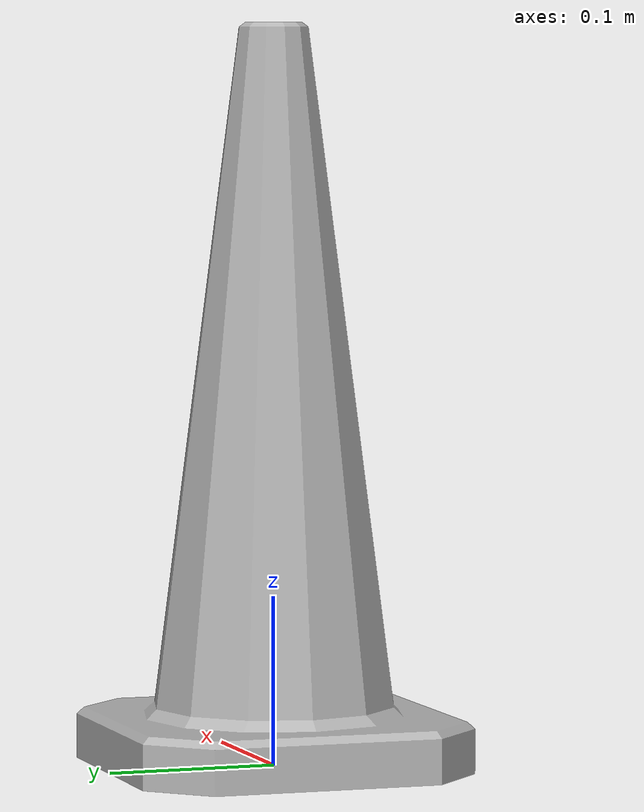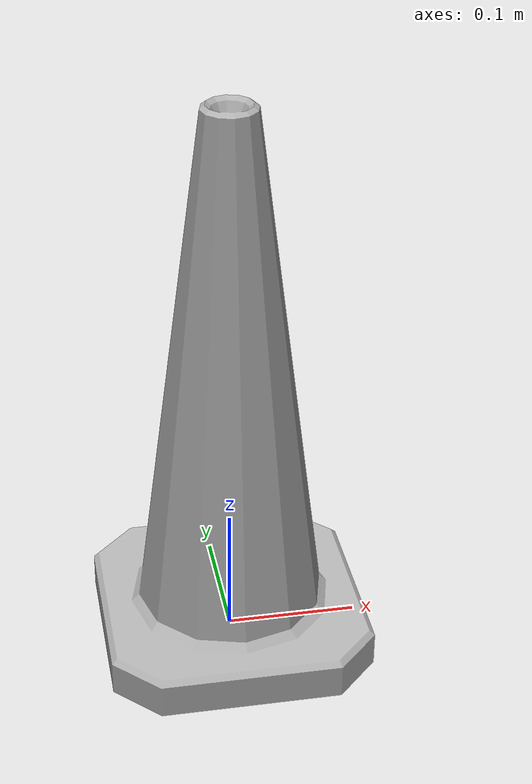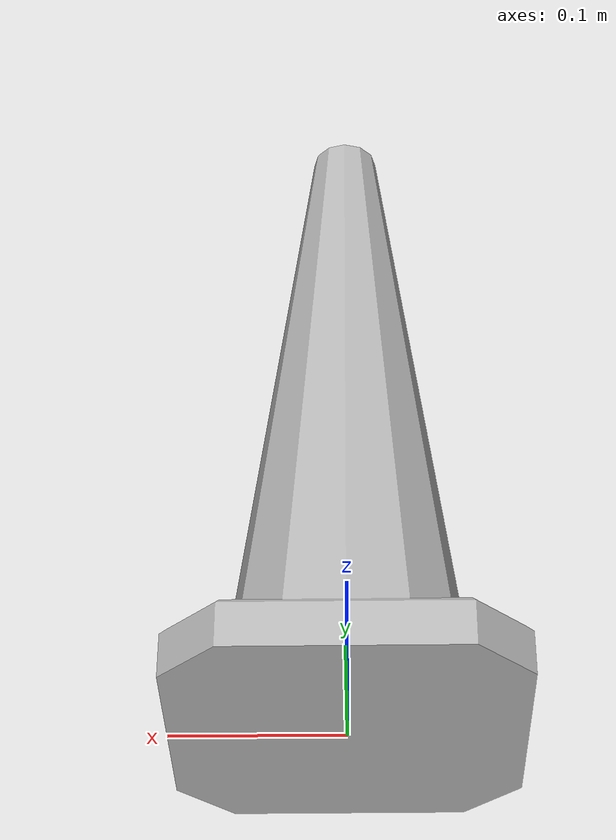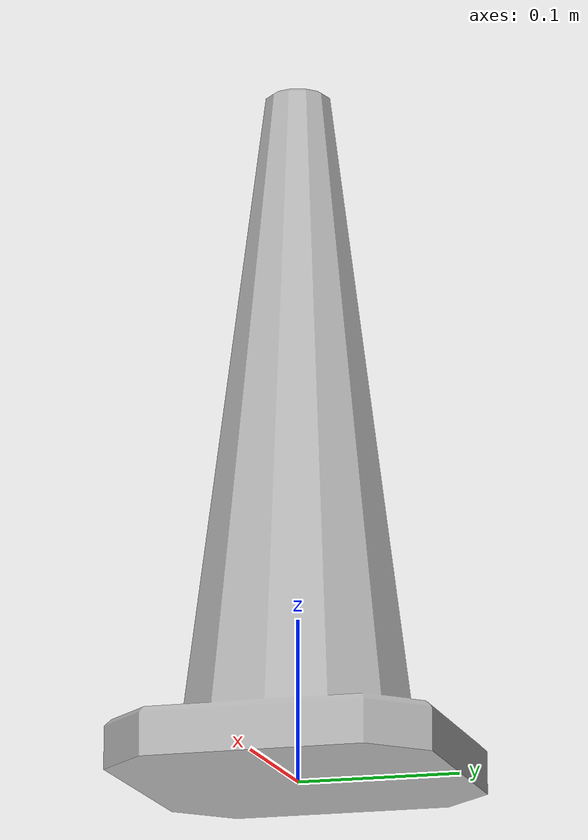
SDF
<?xml version="1.0" ?>
<sdf version="1.5">
  <model name="Construction Cone">
    <link name="link">
      <collision name="collision">
        <geometry>
          <mesh>
            <scale>4 4 4</scale>
            <uri>model://construction_cone/meshes/construction_cone.dae</uri>
          </mesh>
        </geometry>
      </collision>
      <visual name="visual">
        <geometry>
          <mesh>
            <scale>4 4 4</scale>
            <uri>model://construction_cone/meshes/construction_cone.dae</uri>
          </mesh>
        </geometry>
      </visual>
    </link>
  </model>
</sdf>
